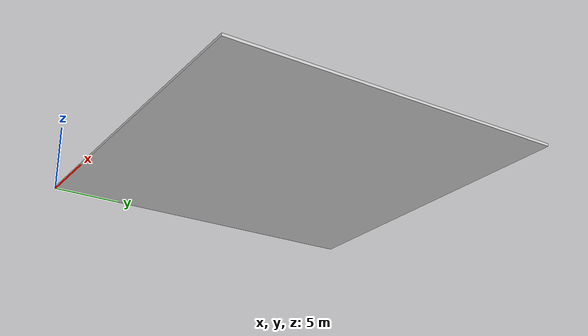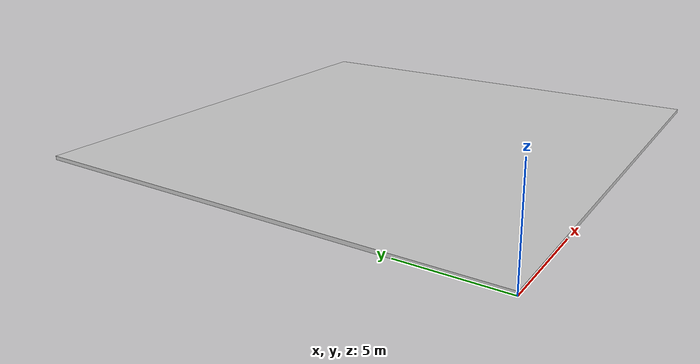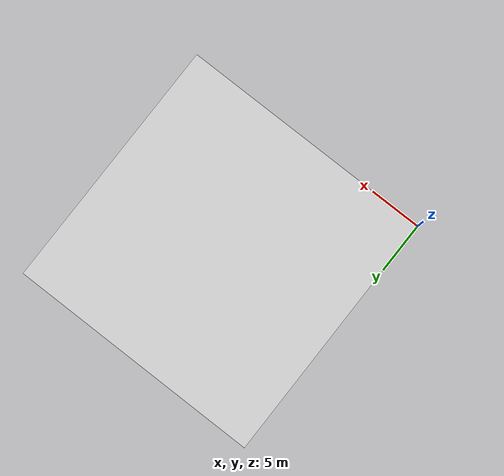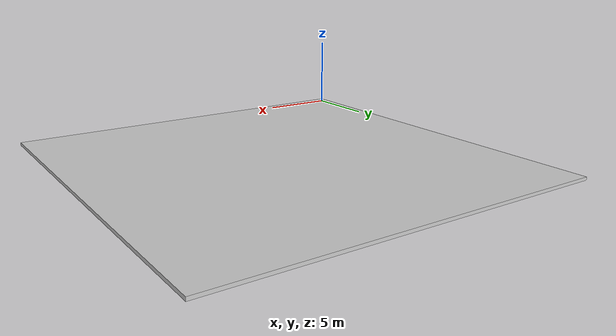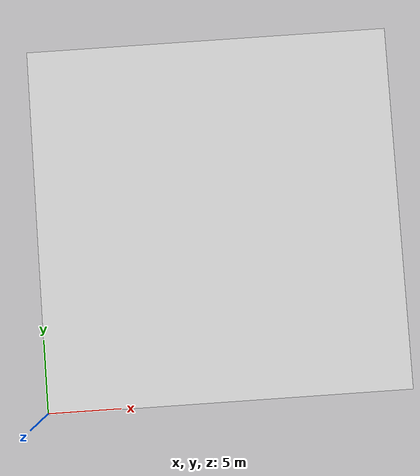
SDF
<?xml version="1.0" ?>
<sdf version="1.5">
  <model name="lightgrey_floor">
    <static>true</static>
    <link name="link1">
      <pose>12.5 12.5 0.1 0 0 0</pose>
      <collision name="collision">
        <geometry>
          <box>
            <size>25 25 0.2</size>
          </box>
        </geometry>
      </collision>
      <visual name="visual">
        <cast_shadows>false</cast_shadows>
        <geometry>
          <box>
            <size>25 25 0.2</size>
          </box>
        </geometry>
        <material>
          <script>
            <uri>model://lightgrey_floor/materials/scripts</uri>
            <uri>model://lightgrey_floor/materials/textures</uri>
            <name>vrc/lightgrey_floor</name>
          </script>
        </material>
      </visual>
    </link>
  </model>
</sdf>
